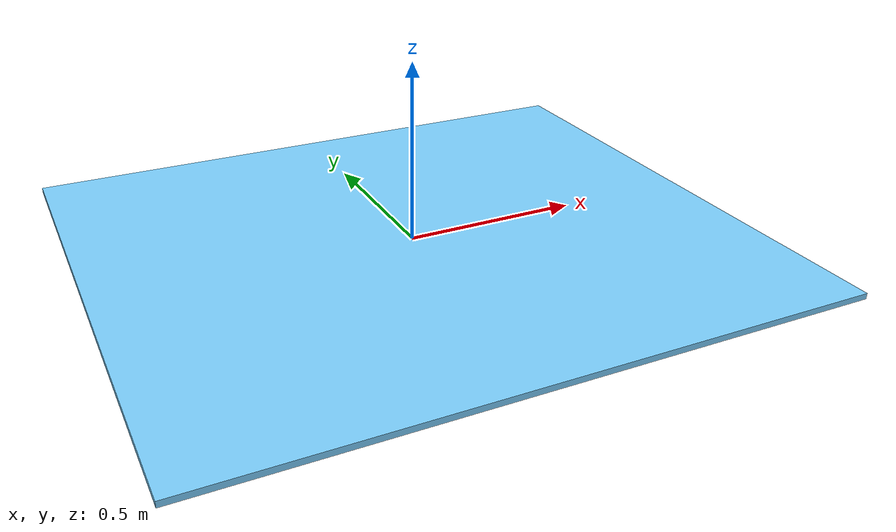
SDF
<?xml version="1.0" ?>
<sdf version="1.6">
  <model name="gantry_tray">
    <static>false</static>
    <link name="tray">
      <inertial>
        <mass>1</mass>
        <inertia>
          <ixx>0.0408</ixx>
          <ixy>0</ixy>
          <ixz>0</ixz>
          <iyy>0.02084</iyy>
          <iyz>0</iyz>
          <izz>0.0616</izz>
        </inertia>
      </inertial>
      <gravity>true</gravity>
      <collision name="gantry_tray_collision">
        <pose>0 0 0 0 0 0</pose>
        <max_contacts>10</max_contacts>
        <surface>
          <contact>
            <ode>
              <max_vel>0.0</max_vel>
              <min_depth>0.001</min_depth>
            </ode>
          </contact>
        </surface>
        <geometry>
            <mesh>
            <uri>model://gantry_tray/mesh/gantry_tray.dae</uri>
            <scale>1 1 1</scale>
            </mesh>
        </geometry>
      </collision>

      <visual name="gantry_tray_visual">
        <pose>0 0 0 0 0 0</pose>
        <geometry>
            <mesh>
            <uri>model://gantry_tray/mesh/gantry_tray.dae</uri>
            <scale>1 1 1</scale>
            </mesh>
        </geometry>
        <material>
          <ambient>0.48627451 0.819607843 1 1</ambient>
          <diffuse>0.48627451 0.819607843 1 1</diffuse>
        </material>
      </visual>
    </link>
    <allow_auto_disable>0</allow_auto_disable>
  </model>
</sdf>
